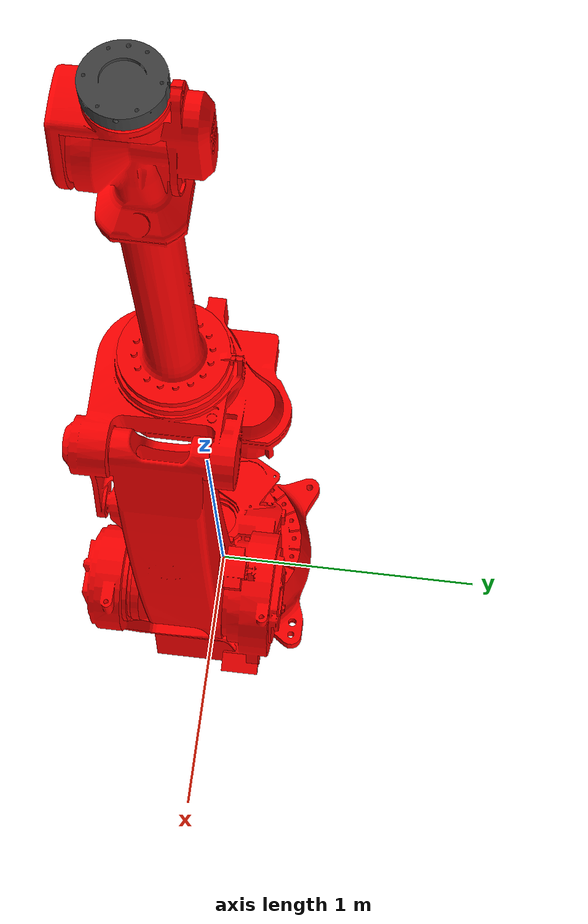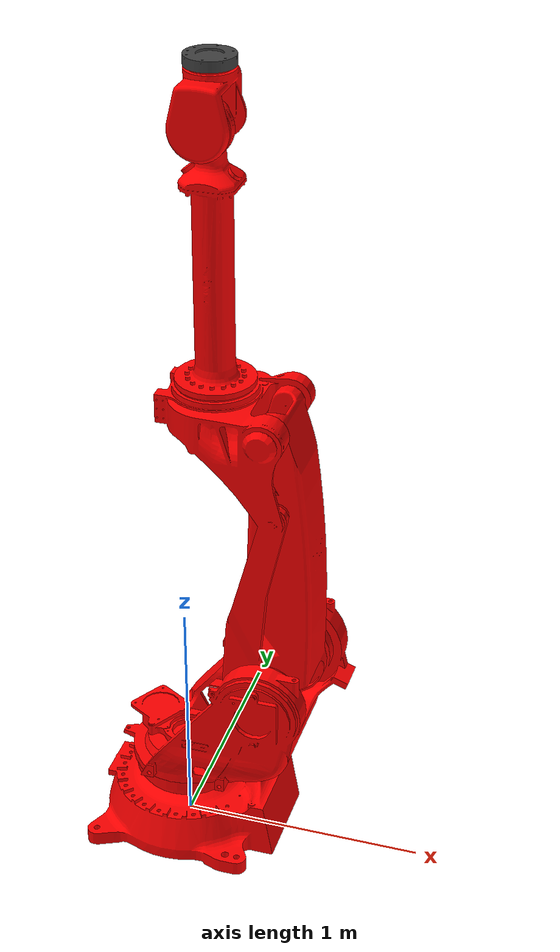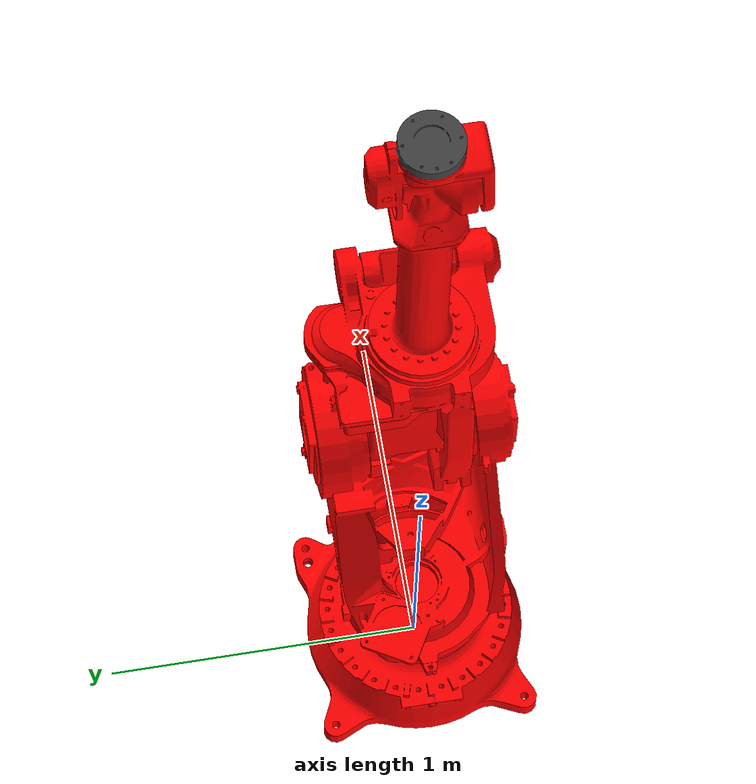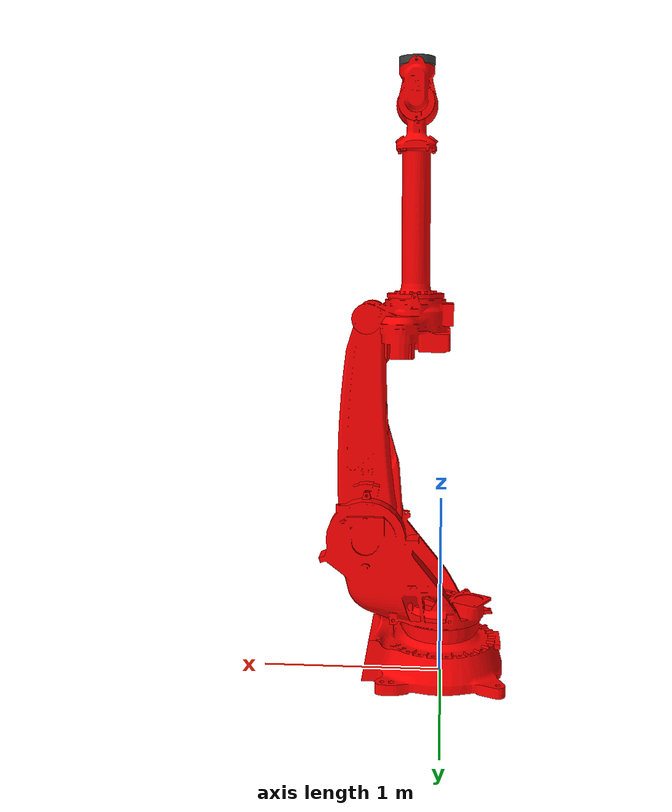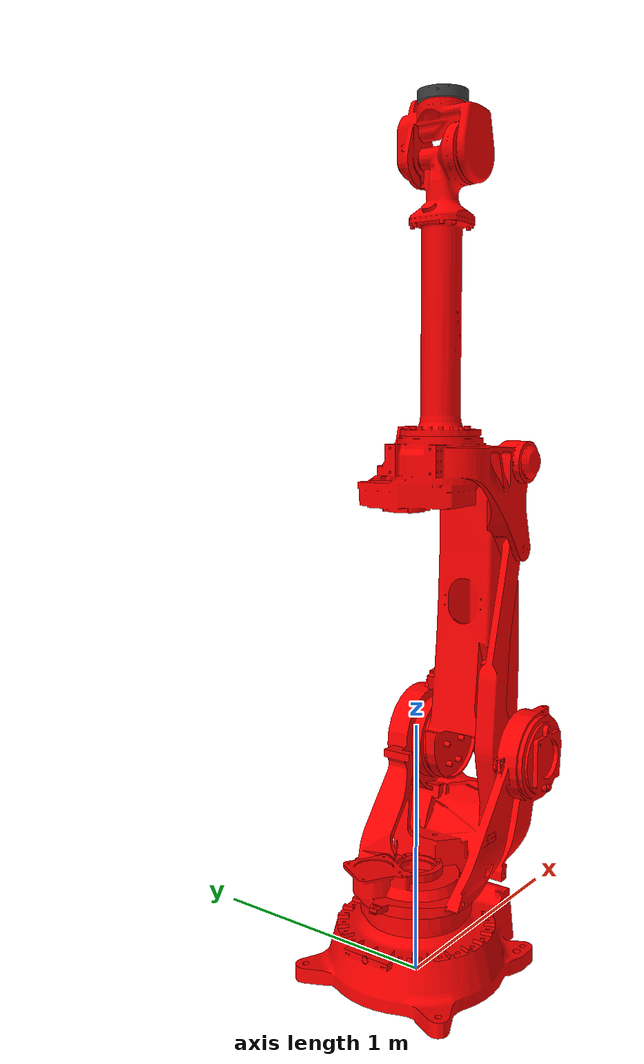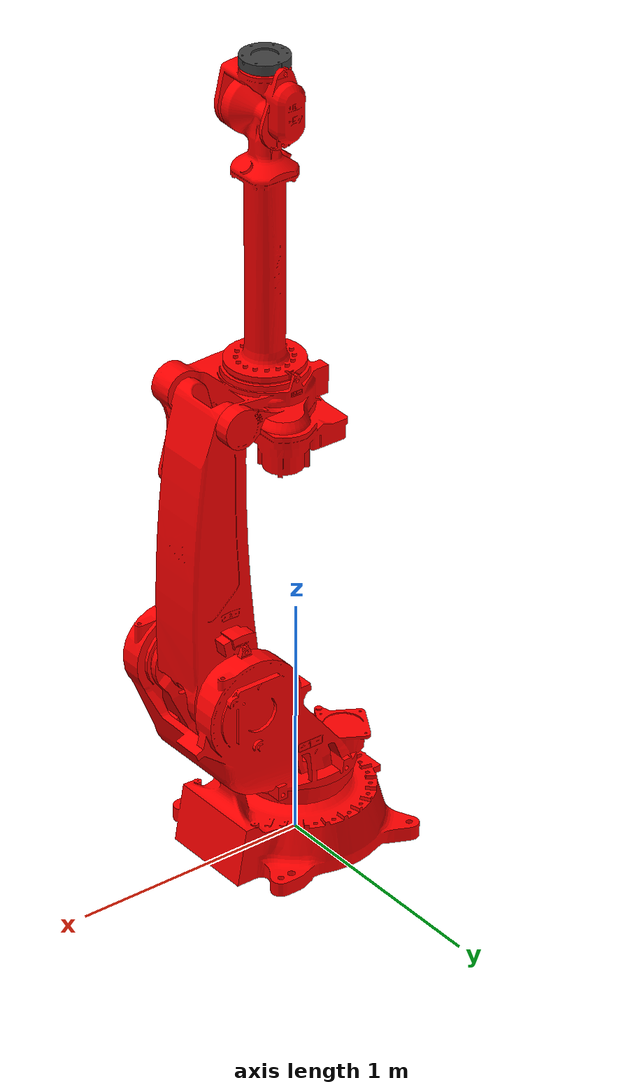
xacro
<?xml version="1.0" ?>

<robot name="comau_nj220foundry" xmlns:xacro="http://ros.org/wiki/xacro">
	<xacro:include filename="$(find comau_nj220foundry_support)/urdf/comau_nj220foundry_no_paralelogram_macro.xacro"/>
	<xacro:comau_nj220foundry prefix="" />

  <!-- Frame coincident with all-zeros TCP on COMAU controller -->
  <link name="world"/>
  <joint name="world_joint" type="fixed">
    <child link="world"/>
    <parent link="base"/>
    <origin rpy="0 0 -3.14159265" xyz="0.0 0.0 0.0"/>
  </joint>
</robot>

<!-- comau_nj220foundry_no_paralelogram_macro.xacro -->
<robot xmlns:xacro="http://ros.org/wiki/xacro">

<xacro:macro name="comau_nj220foundry" params="prefix">
  <link name="${prefix}base_link">
    <inertial>
      <origin xyz="-0.0358170633766097 -1.20441996116888E-05 0.133200870997853" rpy="0 0 0" />
      <mass value="780.971804585525" />
      <inertia
        ixx="25.7893755214986"
        ixy="0.00235845405507113"
        ixz="-0.00767829710479589"
        iyy="33.647645098437"
        iyz="-2.52517581915218E-05"
        izz="48.0777964288332" />
    </inertial>
    <visual>
      <origin xyz="0 0 0" rpy="0 0 0" />
      <geometry>
        <mesh filename="package://comau_nj220foundry_support/meshes/base_link.STL" />
      </geometry>
      <material name="">
        <color rgba="1 0 0 1" />
      </material>
    </visual>
    <collision>
      <origin xyz="0 0 0" rpy="0 0 0" />
      <geometry>
        <mesh filename="package://comau_nj220foundry_support/meshes/base_link.STL" />
      </geometry>
    </collision>
  </link>
  <link name="${prefix}link_1">
    <inertial>
      <origin xyz="-0.31396992767481 0.0253587384500452 -0.474017704993115" rpy="0 0 0" />
      <mass value="420.565744343403" />
      <inertia
        ixx="35.7817509056238"
        ixy="0.520180036390352"
        ixz="10.0053587127595"
        iyy="30.9722759894707"
        iyz="0.160171361208465"
        izz="34.6744270964128" />
    </inertial>
    <visual>
      <origin xyz="0 0 0" rpy="0 0 0" />
      <geometry>
        <mesh filename="package://comau_nj220foundry_support/meshes/link_1.STL" />
      </geometry>
      <material name="">
        <color rgba="1 0 0 1" />
      </material>
    </visual>
    <collision>
      <origin xyz="0 0 0" rpy="0 0 0" />
      <geometry>
        <mesh filename="package://comau_nj220foundry_support/meshes/link_1.STL" />
      </geometry>
    </collision>
  </link>
  <joint name="${prefix}Joint_1" type="continuous">
    <origin xyz="0 0 0.235" rpy="3.1416 0 3.1416" />
    <parent link="${prefix}base_link" />
    <child link="${prefix}link_1" />
    <axis xyz="0 0 1" />
    <limit
      effort="0"
      lower="-1.570796327"
      upper="1.570796327"
      velocity="0" />
  </joint>
  <link name="${prefix}link_2">
    <inertial>
      <origin xyz="0.513837931238063 0.0184154121097806 -0.00325920706541606" rpy="0 0 0" />
      <mass value="120.346338479762" />
      <inertia
        ixx="2.21763636029507"
        ixy="0.108333386772274"
        ixz="-0.466409872645464"
        iyy="21.9600059511248"
        iyz="-0.00164891028536273"
        izz="21.6711305445385" />
    </inertial>
    <visual>
      <origin xyz="0 0 0" rpy="0 0 0" />
      <geometry>
        <mesh filename="package://comau_nj220foundry_support/meshes/link_2.STL" />
      </geometry>
      <material name="">
        <color rgba="1 0 0 1" />
      </material>
    </visual>
    <collision>
      <origin xyz="0 0 0" rpy="0 0 0" />
      <geometry>
        <mesh filename="package://comau_nj220foundry_support/meshes/link_2.STL" />
      </geometry>
    </collision>
  </link>
  <joint name="${prefix}Joint_2" type="continuous">
    <origin xyz="-0.4 0 -0.595" rpy="-1.5708 1.5708 0" />
    <parent link="${prefix}link_1" />
    <child link="${prefix}link_2" />
    <axis xyz="0 0 1" />
    <limit
      effort="0"
      lower="-1.308996939"
      upper="1.658062789"
      velocity="0" />
  </joint>
  <link name="${prefix}link_3">
    <inertial>
      <origin xyz="-0.210396124225083 -0.0423931479719581 -0.019391381682002" rpy="0 0 0" />
      <mass value="303.80693605973" />
      <inertia
        ixx="8.35587249373669"
        ixy="-0.244128411277754"
        ixz="1.1650469937296"
        iyy="10.8913039787856"
        iyz="0.330627906059617"
        izz="6.72354689581788" />
    </inertial>
    <visual>
      <origin xyz="0 0 0" rpy="0 0 0" />
      <geometry>
        <mesh filename="package://comau_nj220foundry_support/meshes/link_3.STL" />
      </geometry>
      <material name="">
        <color rgba="1 0 0 1" />
      </material>
    </visual>
    <collision>
      <origin xyz="0 0 0" rpy="0 0 0" />
      <geometry>
        <mesh filename="package://comau_nj220foundry_support/meshes/link_3.STL" />
      </geometry>
    </collision>
  </link>
  <joint name="${prefix}Joint_3" type="continuous">
    <origin xyz="1.175 0 0" rpy="-3.1416 0 1.5708" />
    <parent link="${prefix}link_2" />
    <child link="${prefix}link_3" />
    <axis xyz="0 0 1" />
    <limit
      effort="0"
      lower="-4.468042885"
      upper="0.174532925"
      velocity="0" />
  </joint>
  <link name="${prefix}link_4">
    <inertial>
      <origin xyz="-0.0256728535495437 2.66762843369739E-05 -0.712275200970885" rpy="0 0 0" />
      <mass value="90.9627495047463" />
      <inertia
        ixx="11.9711971614497"
        ixy="0.000238836881384474"
        ixz="0.72899757991181"
        iyy="12.0895566165064"
        iyz="-0.000197635616744173"
        izz="0.629339131875661" />
    </inertial>
    <visual>
      <origin xyz="0 0 0" rpy="0 0 0" />
      <geometry>
        <mesh filename="package://comau_nj220foundry_support/meshes/link_4.STL" />
      </geometry>
      <material name="">
        <color rgba="1 0 0 1" />
      </material>
    </visual>
    <collision>
      <origin xyz="0 0 0" rpy="0 0 0" />
      <geometry>
        <mesh filename="package://comau_nj220foundry_support/meshes/link_4.STL" />
      </geometry>
    </collision>
  </link>
  <joint name="${prefix}Joint_4" type="continuous">
    <origin xyz="-0.25 0.105 0" rpy="1.5708 1.5708 0" />
    <parent link="${prefix}link_3" />
    <child link="${prefix}link_4" />
    <axis xyz="0 0 1" />
    <limit
      effort="0"
      lower="-6.2831853"
      upper="6.2831853"
      velocity="0" />
  </joint>
  <link name="${prefix}link_5">
    <inertial>
      <origin xyz="-2.49575698055282E-05 -0.0937543698376899 0.0150627860882397" rpy="0 0 0" />
      <mass value="50.6154004140881" />
      <inertia
        ixx="0.865924420901739"
        ixy="-1.86243900593643E-05"
        ixz="-9.94807975766733E-05"
        iyy="0.668259992097818"
        iyz="0.0263894524846694"
        izz="0.387396231292754" />
    </inertial>
    <visual>
      <origin xyz="0 0 0" rpy="0 0 0" />
      <geometry>
        <mesh filename="package://comau_nj220foundry_support/meshes/link_5.STL" />
      </geometry>
      <material name="">
        <color rgba="1 0 0 1" />
      </material>
    </visual>
    <collision>
      <origin xyz="0 0 0" rpy="0 0 0" />
      <geometry>
        <mesh filename="package://comau_nj220foundry_support/meshes/link_5.STL" />
      </geometry>
    </collision>
  </link>
  <joint name="${prefix}Joint_5" type="continuous">
    <origin xyz="0 0 -1.0203" rpy="1.5708 0 1.5708" />
    <parent link="${prefix}link_4" />
    <child link="${prefix}link_5" />
    <axis xyz="0 0 1" />
    <limit
      effort="0"
      lower="-2.1816"
      upper="2.1816"
      velocity="0" />
  </joint>
  <link name="${prefix}link_6">
    <inertial>
      <origin xyz="-0.000609515326357325 5.99002323801445E-05 -0.0238593646013907" rpy="0 0 0" />
      <mass value="5.34369556729818" />
      <inertia
        ixx="0.015146537297728"
        ixy="-5.65758676356259E-06"
        ixz="-1.08667116239343E-05"
        iyy="0.0150032929637792"
        iyz="1.19663919621948E-06"
        izz="0.0291340358139359" />
    </inertial>
    <visual>
      <origin xyz="0 0 0" rpy="0 0 0" />
      <geometry>
        <mesh filename="package://comau_nj220foundry_support/meshes/link_6.STL" />
      </geometry>
      <material name="">
        <color rgba="0.250980392156863 0.250980392156863 0.250980392156863 1" />
      </material>
    </visual>
    <collision>
      <origin xyz="0 0 0" rpy="0 0 0" />
      <geometry>
        <mesh filename="package://comau_nj220foundry_support/meshes/link_6.STL" />
      </geometry>
    </collision>
  </link>
  <joint name="${prefix}Joint_6" type="continuous">
    <origin xyz="0 -0.1905 0" rpy="-1.5708 -1.5708 0" />
    <parent link="${prefix}link_5" />
    <child link="${prefix}link_6" />
    <axis xyz="0 0 1" />
    <limit
      effort="0"
      lower="-6.2831853"
      upper="6.2831853"
      velocity="0" />
  </joint>

  <link name="${prefix}flange" />
  <joint name="${prefix}flange_fake_jnt" type="fixed">
    <origin xyz="0 0 -0.0395" rpy="3.1416 0 -1.5708" />
    <parent link="${prefix}link_6" />
    <child link="${prefix}flange" />
    <axis xyz="0 0 0" />
  </joint>
  <link name="${prefix}ee_link" />
  <joint name="${prefix}ee_link_fixed" type="fixed">
    <origin
      xyz="0.0 0.0 0.0"
      rpy="0.0 0.0 0.0" />
    <parent link="${prefix}flange" />
    <child link="${prefix}ee_link" />
    <axis xyz="0 0 0" />
  </joint>

  <!-- ROS base_link to COMAU World Coordinates transform -->
  <link name="${prefix}base" />
  <joint name="${prefix}base_link-base" type="fixed">
    <origin xyz="0 0 0" rpy="0 0 0"/>
    <child link="${prefix}base"/>
    <parent link="${prefix}base_link"/>
  </joint>

</xacro:macro>
</robot>
